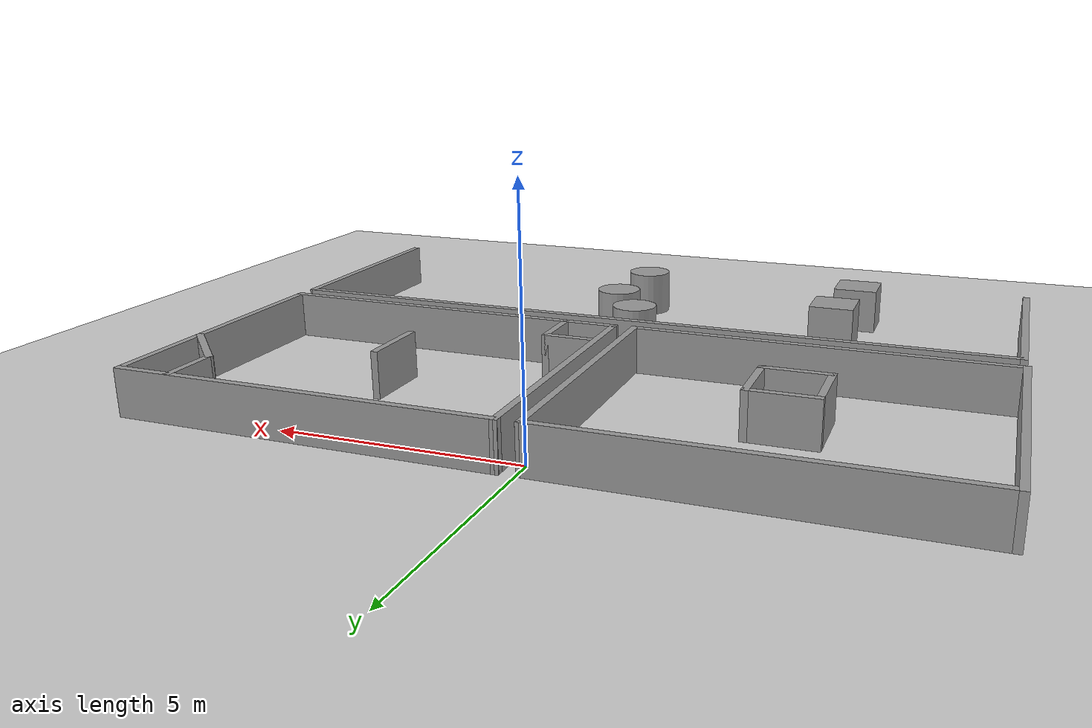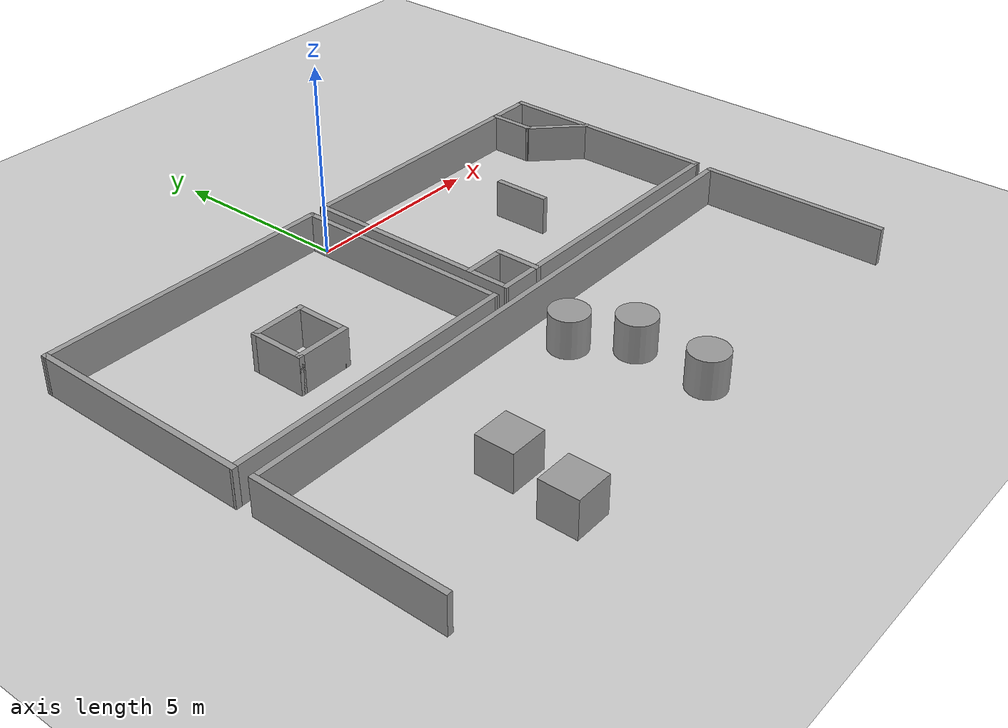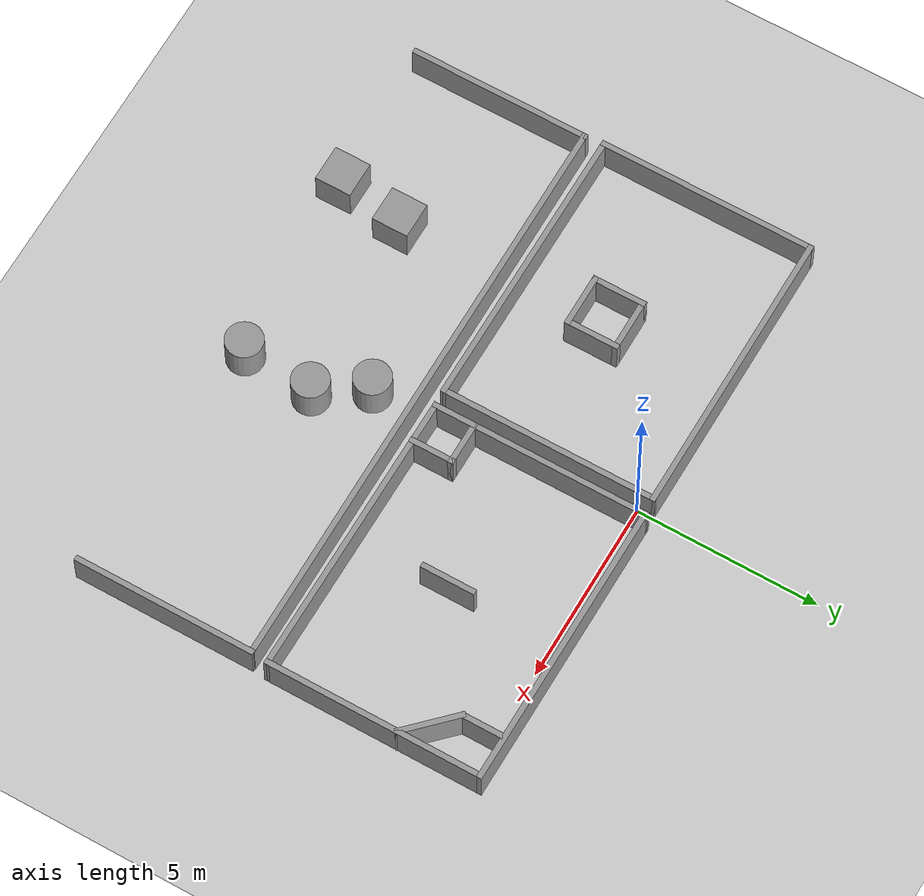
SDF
<sdf version="1.7">
 <world name="default">
  <light name="sun" type="directional">
   <pose>0 0 10 0 -0 0</pose>
   <diffuse>0.8 0.8 0.8 1</diffuse>
   <specular>0.2 0.2 0.2 1</specular>
   <attenuation>
    <range>1000</range>
    <constant>0.9</constant>
    <linear>0.01</linear>
    <quadratic>0.001</quadratic>
   </attenuation>
   <direction>-0.5 0.1 -0.9</direction>
   <spot><inner_angle>0</inner_angle><outer_angle>0</outer_angle><falloff>0</falloff></spot>
  </light>
  <model name="ground_plane">
   <static>1</static>
   <link name="link">
    <collision name="collision">
     <geometry><plane><normal>0 0 1</normal><size>100 100</size></plane></geometry>
     <surface>
      <contact><collide_bitmask>65535</collide_bitmask></contact>
      <friction><ode><mu>100</mu><mu2>50</mu2></ode></friction>
     </surface>
    </collision>
    <visual name="visual">
     <cast_shadows>0</cast_shadows>
     <geometry><plane><normal>0 0 1</normal><size>100 100</size></plane></geometry>
     <material>
      <script><uri>file://media/materials/scripts/gazebo.material</uri><name>Gazebo/Grey</name></script>
     </material>
    </visual>
   </link>
  </model>
  <gravity>0 0 -9.8</gravity>
  <magnetic_field>6e-06 2.3e-05 -4.2e-05</magnetic_field>
  <atmosphere type="adiabatic"/>
  <physics type="ode">
   <max_step_size>0.001</max_step_size>
   <real_time_factor>1</real_time_factor>
   <real_time_update_rate>1000</real_time_update_rate>
  </physics>
  <scene><ambient>0.4 0.4 0.4 1</ambient><background>0.7 0.7 0.7 1</background><shadows>1</shadows></scene>
  <spherical_coordinates>
   <surface_model>EARTH_WGS84</surface_model>
   <latitude_deg>0</latitude_deg>
   <longitude_deg>0</longitude_deg>
   <elevation>0</elevation>
   <heading_deg>0</heading_deg>
  </spherical_coordinates>
  <model name="Untitled">
   <pose>0.145518 -5.21325 0 0 -0 0</pose>
   <link name="Wall_0">
    <collision name="Wall_0_Collision">
     <geometry><box><size>6 0.15 1</size></box></geometry>
     <pose>0 0 0.5 0 -0 0</pose>
    </collision>
    <visual name="Wall_0_Visual">
     <pose>0 0 0.5 0 -0 0</pose>
     <geometry><box><size>6 0.15 1</size></box></geometry>
     <material>
      <script><uri>file://media/materials/scripts/gazebo.material</uri><name>Gazebo/Grey</name></script>
      <ambient>1 1 1 1</ambient>
     </material>
     <meta><layer>0</layer></meta>
    </visual>
    <pose>-8.14552 2.69775 0 0 -0 1.5708</pose>
   </link>
   <link name="Wall_1">
    <collision name="Wall_1_Collision">
     <geometry><box><size>8.06006 0.15 1</size></box></geometry>
     <pose>0 0 0.5 0 -0 0</pose>
    </collision>
    <visual name="Wall_1_Visual">
     <pose>0 0 0.5 0 -0 0</pose>
     <geometry><box><size>8.06006 0.15 1</size></box></geometry>
     <material>
      <script><uri>file://media/materials/scripts/gazebo.material</uri><name>Gazebo/Grey</name></script>
      <ambient>1 1 1 1</ambient>
     </material>
     <meta><layer>0</layer></meta>
    </visual>
    <pose>-4.19052 5.60625 0 0 -0 -0.004045</pose>
   </link>
   <link name="Wall_11">
    <collision name="Wall_11_Collision">
     <geometry><box><size>8.05091 0.15 1</size></box></geometry>
     <pose>0 0 0.5 0 -0 0</pose>
    </collision>
    <visual name="Wall_11_Visual">
     <pose>0 0 0.5 0 -0 0</pose>
     <geometry><box><size>8.05091 0.15 1</size></box></geometry>
     <material>
      <script><uri>file://media/materials/scripts/gazebo.material</uri><name>Gazebo/Grey</name></script>
      <ambient>1 1 1 1</ambient>
     </material>
     <meta><layer>0</layer></meta>
    </visual>
    <pose>4.17348 5.59425 0 0 -0 -0.006329</pose>
   </link>
   <link name="Wall_13">
    <collision name="Wall_13_Collision">
     <geometry><box><size>8.05019 0.15 1</size></box></geometry>
     <pose>0 0 0.5 0 -0 0</pose>
    </collision>
    <visual name="Wall_13_Visual">
     <pose>0 0 0.5 0 -0 0</pose>
     <geometry><box><size>8.05019 0.15 1</size></box></geometry>
     <material>
      <script><uri>file://media/materials/scripts/gazebo.material</uri><name>Gazebo/Grey</name></script>
      <ambient>1 1 1 1</ambient>
     </material>
     <meta><layer>0</layer></meta>
    </visual>
    <pose>4.17348 -0.25825 0 0 -0 3.13463</pose>
   </link>
   <link name="Wall_14">
    <collision name="Wall_14_Collision">
     <geometry><box><size>6 0.15 1</size></box></geometry>
     <pose>0 0 0.5 0 -0 0</pose>
    </collision>
    <visual name="Wall_14_Visual">
     <pose>0 0 0.5 0 -0 0</pose>
     <geometry><box><size>6 0.15 1</size></box></geometry>
     <material>
      <script><uri>file://media/materials/scripts/gazebo.material</uri><name>Gazebo/Grey</name></script>
      <ambient>1 1 1 1</ambient>
     </material>
     <meta><layer>0</layer></meta>
    </visual>
    <pose>0.223482 2.69425 0 0 -0 1.5708</pose>
   </link>
   <link name="Wall_17">
    <collision name="Wall_17_Collision">
     <geometry><box><size>5 0.15 1</size></box></geometry>
     <pose>0 0 0.5 0 -0 0</pose>
    </collision>
    <visual name="Wall_17_Visual">
     <pose>0 0 0.5 0 -0 0</pose>
     <geometry><box><size>5 0.15 1</size></box></geometry>
     <material>
      <script><uri>file://media/materials/scripts/gazebo.material</uri><name>Gazebo/Grey</name></script>
      <ambient>1 1 1 1</ambient>
     </material>
     <meta><layer>0</layer></meta>
    </visual>
    <pose>8.08148 -3.19775 0 0 -0 -1.5708</pose>
   </link>
   <link name="Wall_2">
    <collision name="Wall_2_Collision">
     <geometry><box><size>5.999 0.15 1</size></box></geometry>
     <pose>0 0 0.5 0 -0 0</pose>
    </collision>
    <visual name="Wall_2_Visual">
     <pose>0 0 0.5 0 -0 0</pose>
     <geometry><box><size>5.999 0.15 1</size></box></geometry>
     <material>
      <script><uri>file://media/materials/scripts/gazebo.material</uri><name>Gazebo/Grey</name></script>
      <ambient>1 1 1 1</ambient>
     </material>
     <meta><layer>0</layer></meta>
    </visual>
    <pose>-0.235518 2.66575 0 0 -0 -1.5708</pose>
   </link>
   <link name="Wall_25">
    <collision name="Wall_25_Collision">
     <geometry><box><size>1.5 0.15 1</size></box></geometry>
     <pose>0 0 0.5 0 -0 0</pose>
    </collision>
    <visual name="Wall_25_Visual">
     <pose>0 0 0.5 0 -0 0</pose>
     <geometry><box><size>1.5 0.15 1</size></box></geometry>
     <material>
      <script><uri>file://media/materials/scripts/gazebo.material</uri><name>Gazebo/Grey</name></script>
      <ambient>1 1 1 1</ambient>
     </material>
     <meta><layer>0</layer></meta>
    </visual>
    <pose>-4.73152 2.11325 0 0 -0 -1.5708</pose>
   </link>
   <link name="Wall_26">
    <collision name="Wall_26_Collision">
     <geometry><box><size>1.5 0.15 1</size></box></geometry>
     <pose>0 0 0.5 0 -0 0</pose>
    </collision>
    <visual name="Wall_26_Visual">
     <pose>0 0 0.5 0 -0 0</pose>
     <geometry><box><size>1.5 0.15 1</size></box></geometry>
     <material>
      <script><uri>file://media/materials/scripts/gazebo.material</uri><name>Gazebo/Grey</name></script>
      <ambient>1 1 1 1</ambient>
     </material>
     <meta><layer>0</layer></meta>
    </visual>
    <pose>-4.05652 1.43825 0 0 -0 0</pose>
   </link>
   <link name="Wall_27">
    <collision name="Wall_27_Collision">
     <geometry><box><size>1.5 0.15 1</size></box></geometry>
     <pose>0 0 0.5 0 -0 0</pose>
    </collision>
    <visual name="Wall_27_Visual">
     <pose>0 0 0.5 0 -0 0</pose>
     <geometry><box><size>1.5 0.15 1</size></box></geometry>
     <material>
      <script><uri>file://media/materials/scripts/gazebo.material</uri><name>Gazebo/Grey</name></script>
      <ambient>1 1 1 1</ambient>
     </material>
     <meta><layer>0</layer></meta>
    </visual>
    <pose>-3.38152 2.11325 0 0 -0 1.5708</pose>
   </link>
   <link name="Wall_28">
    <collision name="Wall_28_Collision">
     <geometry><box><size>1.5 0.15 1</size></box></geometry>
     <pose>0 0 0.5 0 -0 0</pose>
    </collision>
    <visual name="Wall_28_Visual">
     <pose>0 0 0.5 0 -0 0</pose>
     <geometry><box><size>1.5 0.15 1</size></box></geometry>
     <material>
      <script><uri>file://media/materials/scripts/gazebo.material</uri><name>Gazebo/Grey</name></script>
      <ambient>1 1 1 1</ambient>
     </material>
     <meta><layer>0</layer></meta>
    </visual>
    <pose>-4.05652 2.78825 0 0 -0 3.14159</pose>
   </link>
   <link name="Wall_3">
    <collision name="Wall_3_Collision">
     <geometry><box><size>8.06 0.15 1</size></box></geometry>
     <pose>0 0 0.5 0 -0 0</pose>
    </collision>
    <visual name="Wall_3_Visual">
     <pose>0 0 0.5 0 -0 0</pose>
     <geometry><box><size>8.06 0.15 1</size></box></geometry>
     <material>
      <script><uri>file://media/materials/scripts/gazebo.material</uri><name>Gazebo/Grey</name></script>
      <ambient>1 1 1 1</ambient>
     </material>
     <meta><layer>0</layer></meta>
    </visual>
    <pose>-4.19052 -0.24275 0 0 -0 3.13755</pose>
   </link>
   <link name="Wall_30">
    <collision name="Wall_30_Collision">
     <geometry><box><size>1.25 0.15 1</size></box></geometry>
     <pose>0 0 0.5 0 -0 0</pose>
    </collision>
    <visual name="Wall_30_Visual">
     <pose>0 0 0.5 0 -0 0</pose>
     <geometry><box><size>1.25 0.15 1</size></box></geometry>
     <material>
      <script><uri>file://media/materials/scripts/gazebo.material</uri><name>Gazebo/Grey</name></script>
      <ambient>1 1 1 1</ambient>
     </material>
     <meta><layer>0</layer></meta>
    </visual>
    <pose>0.776482 0.85725 0 0 -0 0</pose>
   </link>
   <link name="Wall_31">
    <collision name="Wall_31_Collision">
     <geometry><box><size>1.25 0.15 1</size></box></geometry>
     <pose>0 0 0.5 0 -0 0</pose>
    </collision>
    <visual name="Wall_31_Visual">
     <pose>0 0 0.5 0 -0 0</pose>
     <geometry><box><size>1.25 0.15 1</size></box></geometry>
     <material>
      <script><uri>file://media/materials/scripts/gazebo.material</uri><name>Gazebo/Grey</name></script>
      <ambient>1 1 1 1</ambient>
     </material>
     <meta><layer>0</layer></meta>
    </visual>
    <pose>1.32648 0.30725 0 0 -0 -1.5708</pose>
   </link>
   <link name="Wall_33">
    <collision name="Wall_33_Collision">
     <geometry><box><size>1.25 0.15 1</size></box></geometry>
     <pose>0 0 0.5 0 -0 0</pose>
    </collision>
    <visual name="Wall_33_Visual">
     <pose>0 0 0.5 0 -0 0</pose>
     <geometry><box><size>1.25 0.15 1</size></box></geometry>
     <material>
      <script><uri>file://media/materials/scripts/gazebo.material</uri><name>Gazebo/Grey</name></script>
      <ambient>1 1 1 1</ambient>
     </material>
     <meta><layer>0</layer></meta>
    </visual>
    <pose>6.98338 5.00507 0 0 -0 -1.5708</pose>
   </link>
   <link name="Wall_34">
    <collision name="Wall_34_Collision">
     <geometry><box><size>1.75 0.15 1</size></box></geometry>
     <pose>0 0 0.5 0 -0 0</pose>
    </collision>
    <visual name="Wall_34_Visual">
     <pose>0 0 0.5 0 -0 0</pose>
     <geometry><box><size>1.75 0.15 1</size></box></geometry>
     <material>
      <script><uri>file://media/materials/scripts/gazebo.material</uri><name>Gazebo/Grey</name></script>
      <ambient>1 1 1 1</ambient>
     </material>
     <meta><layer>0</layer></meta>
    </visual>
    <pose>7.54907 3.86309 0 0 -0 -0.785398</pose>
   </link>
   <link name="Wall_36">
    <collision name="Wall_36_Collision">
     <geometry><box><size>1.5 0.15 1</size></box></geometry>
     <pose>0 0 0.5 0 -0 0</pose>
    </collision>
    <visual name="Wall_36_Visual">
     <pose>0 0 0.5 0 -0 0</pose>
     <geometry><box><size>1.5 0.15 1</size></box></geometry>
     <material>
      <script><uri>file://media/materials/scripts/gazebo.material</uri><name>Gazebo/Grey</name></script>
      <ambient>1 1 1 1</ambient>
     </material>
     <meta><layer>0</layer></meta>
    </visual>
    <pose>4.07848 2.35625 0 0 -0 -1.5708</pose>
   </link>
   <link name="Wall_38">
    <collision name="Wall_38_Collision">
     <geometry><box><size>6 0.15 1</size></box></geometry>
     <pose>0 0 0.5 0 -0 0</pose>
    </collision>
    <visual name="Wall_38_Visual">
     <pose>0 0 0.5 0 -0 0</pose>
     <geometry><box><size>6 0.15 1</size></box></geometry>
     <material>
      <script><uri>file://media/materials/scripts/gazebo.material</uri><name>Gazebo/Grey</name></script>
      <ambient>1 1 1 1</ambient>
     </material>
     <meta><layer>0</layer></meta>
    </visual>
    <pose>8.12348 2.63925 0 0 -0 -1.5708</pose>
   </link>
   <link name="Wall_5">
    <collision name="Wall_5_Collision">
     <geometry><box><size>16.25 0.15 1</size></box></geometry>
     <pose>0 0 0.5 0 -0 0</pose>
    </collision>
    <visual name="Wall_5_Visual">
     <pose>0 0 0.5 0 -0 0</pose>
     <geometry><box><size>16.25 0.15 1</size></box></geometry>
     <material>
      <script><uri>file://media/materials/scripts/gazebo.material</uri><name>Gazebo/Grey</name></script>
      <ambient>1 1 1 1</ambient>
     </material>
     <meta><layer>0</layer></meta>
    </visual>
    <pose>-0.035518 -0.75675 0 0 -0 0</pose>
   </link>
   <link name="Wall_8">
    <collision name="Wall_8_Collision">
     <geometry><box><size>5 0.15 1</size></box></geometry>
     <pose>0 0 0.5 0 -0 0</pose>
    </collision>
    <visual name="Wall_8_Visual">
     <pose>0 0 0.5 0 -0 0</pose>
     <geometry><box><size>5 0.15 1</size></box></geometry>
     <material>
      <script><uri>file://media/materials/scripts/gazebo.material</uri><name>Gazebo/Grey</name></script>
      <ambient>1 1 1 1</ambient>
     </material>
     <meta><layer>0</layer></meta>
    </visual>
    <pose>-8.08552 -3.18175 0 0 -0 1.5708</pose>
   </link>
   <static>1</static>
  </model>
  <model name="unit_box">
   <pose>-3.78977 -8.88559 0.499995 0 1e-05 0</pose>
   <link name="link">
    <inertial>
     <mass>1</mass>
     <inertia>
      <ixx>0.166667</ixx>
      <ixy>0</ixy>
      <ixz>0</ixz>
      <iyy>0.166667</iyy>
      <iyz>0</iyz>
      <izz>0.166667</izz>
     </inertia>
    </inertial>
    <collision name="collision"><geometry><box><size>1 1 1</size></box></geometry></collision>
    <visual name="visual">
     <geometry><box><size>1 1 1</size></box></geometry>
     <material>
      <script><name>Gazebo/Grey</name><uri>file://media/materials/scripts/gazebo.material</uri></script>
     </material>
    </visual>
   </link>
  </model>
  <model name="unit_box_0">
   <pose>-4.07125 -10.6848 0.499995 -1e-05 -0 -0</pose>
   <link name="link">
    <inertial>
     <mass>1</mass>
     <inertia>
      <ixx>0.166667</ixx>
      <ixy>0</ixy>
      <ixz>0</ixz>
      <iyy>0.166667</iyy>
      <iyz>0</iyz>
      <izz>0.166667</izz>
     </inertia>
    </inertial>
    <collision name="collision"><geometry><box><size>1 1 1</size></box></geometry></collision>
    <visual name="visual">
     <geometry><box><size>1 1 1</size></box></geometry>
     <material>
      <script><name>Gazebo/Grey</name><uri>file://media/materials/scripts/gazebo.material</uri></script>
     </material>
    </visual>
   </link>
  </model>
  <model name="unit_cylinder">
   <pose>1.30673 -8.43789 0.499997 3e-06 4e-06 -0</pose>
   <link name="link">
    <inertial>
     <mass>1</mass>
     <inertia><ixx>0.145833</ixx><ixy>0</ixy><ixz>0</ixz><iyy>0.145833</iyy><iyz>0</iyz><izz>0.125</izz></inertia>
    </inertial>
    <collision name="collision">
     <geometry><cylinder><radius>0.5</radius><length>1</length></cylinder></geometry>
    </collision>
    <visual name="visual">
     <geometry><cylinder><radius>0.5</radius><length>1</length></cylinder></geometry>
     <material>
      <script><name>Gazebo/Grey</name><uri>file://media/materials/scripts/gazebo.material</uri></script>
     </material>
    </visual>
   </link>
  </model>
  <model name="unit_cylinder_0">
   <pose>1.17304 -10.4028 0.499993 -3e-06 -4e-06 -0</pose>
   <link name="link">
    <inertial>
     <mass>1</mass>
     <inertia><ixx>0.145833</ixx><ixy>0</ixy><ixz>0</ixz><iyy>0.145833</iyy><iyz>0</iyz><izz>0.125</izz></inertia>
    </inertial>
    <collision name="collision">
     <geometry><cylinder><radius>0.5</radius><length>1</length></cylinder></geometry>
    </collision>
    <visual name="visual">
     <geometry><cylinder><radius>0.5</radius><length>1</length></cylinder></geometry>
     <material>
      <script><name>Gazebo/Grey</name><uri>file://media/materials/scripts/gazebo.material</uri></script>
     </material>
    </visual>
   </link>
  </model>
  <model name="unit_cylinder_1">
   <pose>0.484042 -7.16477 0.499997 3e-06 4e-06 -0</pose>
   <link name="link">
    <inertial>
     <mass>1</mass>
     <inertia><ixx>0.145833</ixx><ixy>0</ixy><ixz>0</ixz><iyy>0.145833</iyy><iyz>0</iyz><izz>0.125</izz></inertia>
    </inertial>
    <collision name="collision">
     <geometry><cylinder><radius>0.5</radius><length>1</length></cylinder></geometry>
    </collision>
    <visual name="visual">
     <geometry><cylinder><radius>0.5</radius><length>1</length></cylinder></geometry>
     <material>
      <script><name>Gazebo/Grey</name><uri>file://media/materials/scripts/gazebo.material</uri></script>
     </material>
    </visual>
   </link>
  </model>
 </world>
</sdf>
